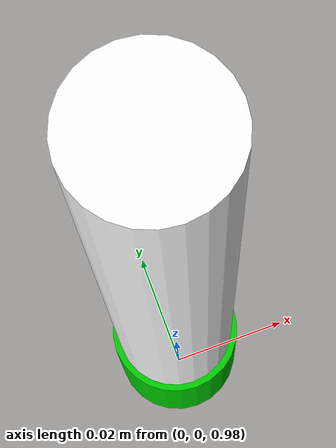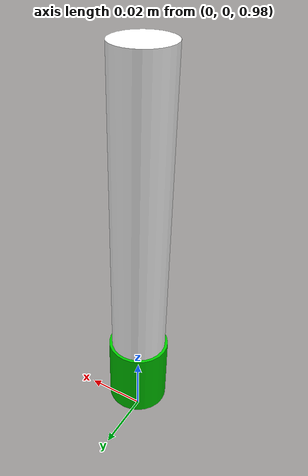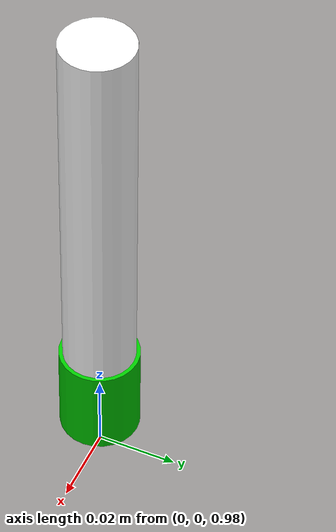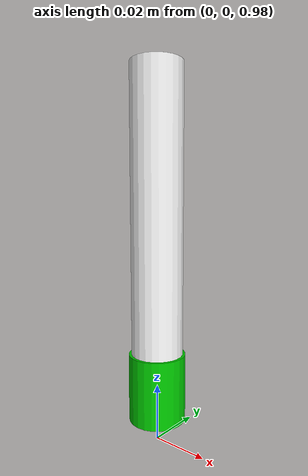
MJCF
<mujoco model="mug_lean">
  <asset>
    <material name="expo" specular="1" shininess="1"/>
  </asset>

  <worldbody>
    <body name="manipulated_object" pos="0 0 1">
      <joint type="free" name="manipulated_object_dof"/>
      <geom name="cap" size=".01 .012 " type="cylinder" material="expo" rgba="0 0.8 0 1"/>
      <geom name="cyl" size=".009 .05 " pos="0 0 0.06" type="cylinder" material="expo"/>

    </body>
  </worldbody>
</mujoco>
